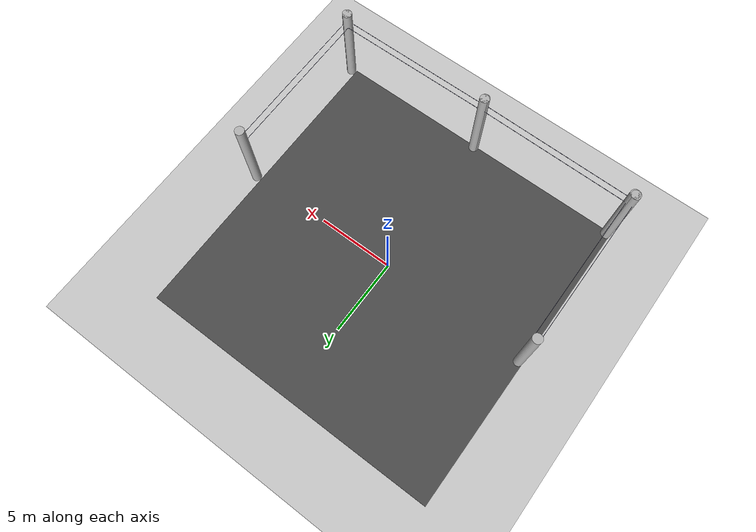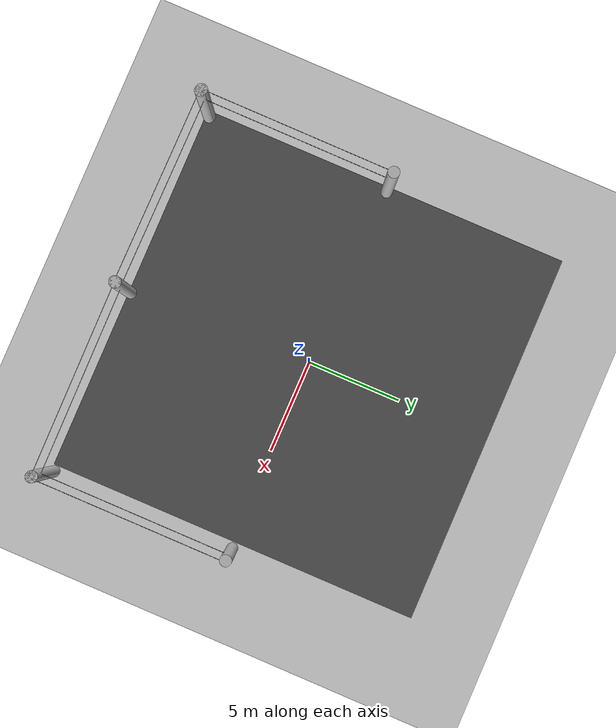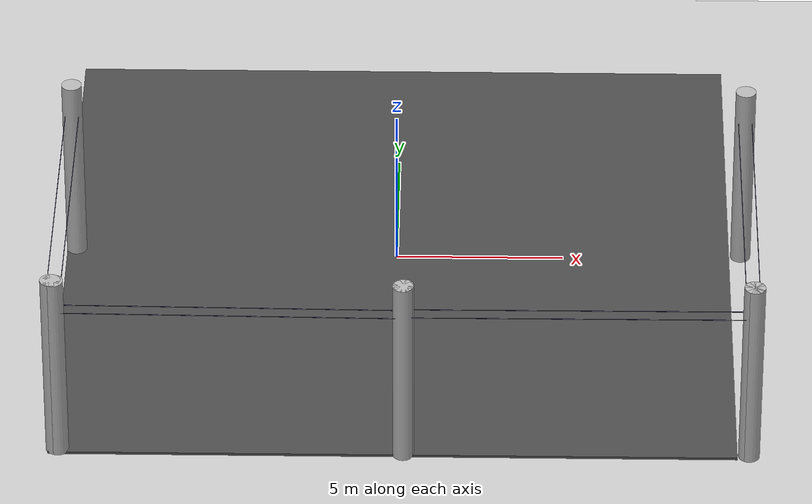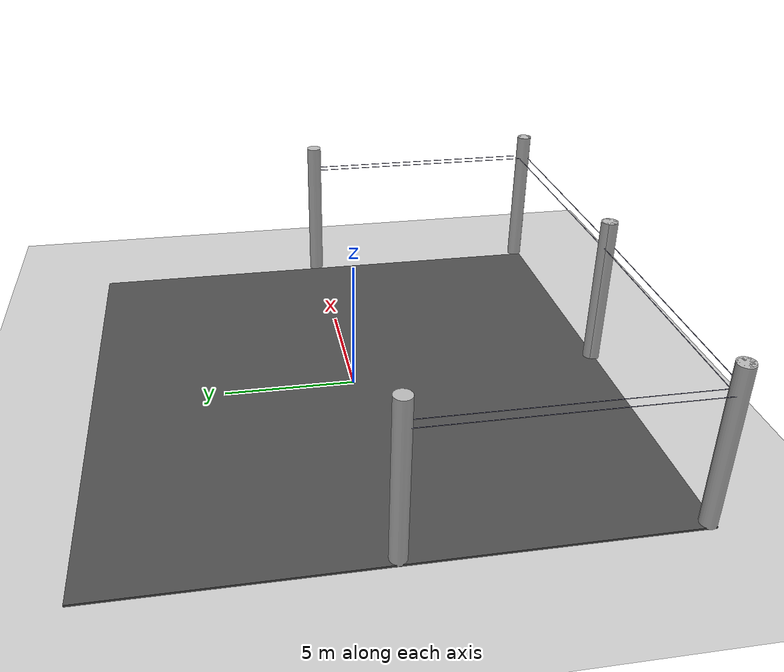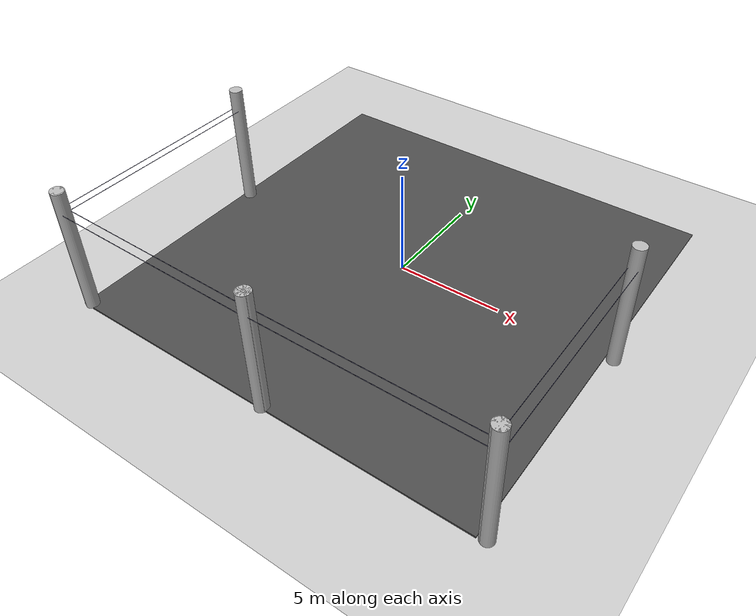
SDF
<sdf version="1.7">
 <world name="default">
  <model name="ground_plane">
   <static>1</static>
   <link name="link">
    <collision name="collision">
     <geometry><plane><normal>0 0 1</normal><size>100 100</size></plane></geometry>
     <surface><friction><ode><mu>100</mu><mu2>50</mu2></ode></friction></surface>
    </collision>
    <visual name="visual">
     <cast_shadows>0</cast_shadows>
     <geometry><plane><normal>0 0 1</normal><size>100 100</size></plane></geometry>
     <material>
      <script><uri>file://media/materials/scripts/gazebo.material</uri><name>Gazebo/Grey</name></script>
     </material>
    </visual>
   </link>
  </model>
  <model name="asphalt_plane">
   <pose>0.02662 0 0 0 -0 0</pose>
   <static>1</static>
   <link name="link">
    <collision name="collision"><geometry><box><size>20 20 0.1</size></box></geometry></collision>
    <visual name="visual">
     <cast_shadows>0</cast_shadows>
     <geometry><box><size>20 20 0.1</size></box></geometry>
     <material>
      <script>
       <uri>model://asphalt_plane/materials/scripts</uri>
       <uri>model://asphalt_plane/materials/textures</uri>
       <name>vrc/asphalt</name>
      </script>
     </material>
    </visual>
   </link>
  </model>
  <model name="telegraph_pole">
   <link name="pole_00">
    <pose>0 -5 3 0 -0 0</pose>
    <inertial>
     <inertia><ixx>1</ixx><ixy>0</ixy><ixz>0</ixz><iyy>1</iyy><iyz>0</iyz><izz>1</izz></inertia>
     <mass>1</mass>
    </inertial>
    <visual name="visual">
     <geometry><cylinder><radius>0.3</radius><length>6</length></cylinder></geometry>
     <material><script><uri>__default__</uri><name>__default__</name></script></material>
    </visual>
    <collision name="collision">
     <geometry><cylinder><radius>0.3</radius><length>6</length></cylinder></geometry>
     <surface>
      <friction>
       <ode><mu>1</mu><mu2>1</mu2><fdir1>0 0 0</fdir1><slip1>0</slip1><slip2>0</slip2></ode>
       <torsional>
        <coefficient>1</coefficient>
        <patch_radius>0</patch_radius>
        <surface_radius>0</surface_radius>
        <use_patch_radius>1</use_patch_radius>
        <ode><slip>0</slip></ode>
       </torsional>
      </friction>
      <bounce><restitution_coefficient>0</restitution_coefficient><threshold>1e+06</threshold></bounce>
      <contact>
       <collide_without_contact>0</collide_without_contact>
       <collide_without_contact_bitmask>1</collide_without_contact_bitmask>
       <collide_bitmask>1</collide_bitmask>
       <ode>
        <soft_cfm>0</soft_cfm>
        <soft_erp>0.2</soft_erp>
        <kp>1e+13</kp>
        <kd>1</kd>
        <max_vel>0.01</max_vel>
        <min_depth>0</min_depth>
       </ode>
       <bullet>
        <split_impulse>1</split_impulse>
        <split_impulse_penetration_threshold>-0.01</split_impulse_penetration_threshold>
        <soft_cfm>0</soft_cfm>
        <soft_erp>0.2</soft_erp>
        <kp>1e+13</kp>
        <kd>1</kd>
       </bullet>
      </contact>
     </surface>
    </collision>
   </link>
   <link name="line00_00_01">
    <pose>-0.2 0 5 1.57 -0 0</pose>
    <inertial>
     <inertia><ixx>1</ixx><ixy>0</ixy><ixz>0</ixz><iyy>1</iyy><iyz>0</iyz><izz>1</izz></inertia>
     <mass>1</mass>
    </inertial>
    <visual name="visual">
     <geometry><cylinder><radius>0.01</radius><length>10</length></cylinder></geometry>
     <material>
      <ambient>0.1 0.1 0.1 1</ambient>
      <diffuse>0.1 0.1 0.2 1</diffuse>
      <specular>0 0 0 0</specular>
      <emissive>0 0 0 1</emissive>
      <shader type="pixel"/>
      <script><name>ModelPreview_5::line00_00_01::visual_MATERIAL_</name><uri>__default__</uri></script>
     </material>
    </visual>
    <collision name="collision">
     <geometry><cylinder><radius>0.01</radius><length>10</length></cylinder></geometry>
     <surface>
      <friction>
       <ode><mu>1</mu><mu2>1</mu2><fdir1>0 0 0</fdir1><slip1>0</slip1><slip2>0</slip2></ode>
       <torsional>
        <coefficient>1</coefficient>
        <patch_radius>0</patch_radius>
        <surface_radius>0</surface_radius>
        <use_patch_radius>1</use_patch_radius>
        <ode><slip>0</slip></ode>
       </torsional>
      </friction>
      <bounce><restitution_coefficient>0</restitution_coefficient><threshold>1e+06</threshold></bounce>
      <contact>
       <collide_without_contact>0</collide_without_contact>
       <collide_without_contact_bitmask>1</collide_without_contact_bitmask>
       <collide_bitmask>1</collide_bitmask>
       <ode>
        <soft_cfm>0</soft_cfm>
        <soft_erp>0.2</soft_erp>
        <kp>1e+13</kp>
        <kd>1</kd>
        <max_vel>0.01</max_vel>
        <min_depth>0</min_depth>
       </ode>
       <bullet>
        <split_impulse>1</split_impulse>
        <split_impulse_penetration_threshold>-0.01</split_impulse_penetration_threshold>
        <soft_cfm>0</soft_cfm>
        <soft_erp>0.2</soft_erp>
        <kp>1e+13</kp>
        <kd>1</kd>
       </bullet>
      </contact>
     </surface>
    </collision>
   </link>
   <link name="line01_00_01">
    <pose>0.2 0 5 1.57 -0 0</pose>
    <inertial>
     <inertia><ixx>1</ixx><ixy>0</ixy><ixz>0</ixz><iyy>1</iyy><iyz>0</iyz><izz>1</izz></inertia>
     <mass>1</mass>
    </inertial>
    <visual name="visual">
     <geometry><cylinder><radius>0.01</radius><length>10</length></cylinder></geometry>
     <material>
      <ambient>0.1 0.1 0.1 1</ambient>
      <diffuse>0.1 0.1 0.2 1</diffuse>
      <specular>0 0 0 0</specular>
      <emissive>0 0 0 1</emissive>
      <shader type="pixel"/>
      <script><name>ModelPreview_5::line01_00_01::visual_MATERIAL_</name><uri>__default__</uri></script>
     </material>
    </visual>
    <collision name="collision">
     <geometry><cylinder><radius>0.01</radius><length>10</length></cylinder></geometry>
     <surface>
      <friction>
       <ode><mu>1</mu><mu2>1</mu2><fdir1>0 0 0</fdir1><slip1>0</slip1><slip2>0</slip2></ode>
       <torsional>
        <coefficient>1</coefficient>
        <patch_radius>0</patch_radius>
        <surface_radius>0</surface_radius>
        <use_patch_radius>1</use_patch_radius>
        <ode><slip>0</slip></ode>
       </torsional>
      </friction>
      <bounce><restitution_coefficient>0</restitution_coefficient><threshold>1e+06</threshold></bounce>
      <contact>
       <collide_without_contact>0</collide_without_contact>
       <collide_without_contact_bitmask>1</collide_without_contact_bitmask>
       <collide_bitmask>1</collide_bitmask>
       <ode>
        <soft_cfm>0</soft_cfm>
        <soft_erp>0.2</soft_erp>
        <kp>1e+13</kp>
        <kd>1</kd>
        <max_vel>0.01</max_vel>
        <min_depth>0</min_depth>
       </ode>
       <bullet>
        <split_impulse>1</split_impulse>
        <split_impulse_penetration_threshold>-0.01</split_impulse_penetration_threshold>
        <soft_cfm>0</soft_cfm>
        <soft_erp>0.2</soft_erp>
        <kp>1e+13</kp>
        <kd>1</kd>
       </bullet>
      </contact>
     </surface>
    </collision>
   </link>
   <link name="pole_01">
    <pose>0 5 3 0 -0 0</pose>
    <inertial>
     <inertia><ixx>1</ixx><ixy>0</ixy><ixz>0</ixz><iyy>1</iyy><iyz>0</iyz><izz>1</izz></inertia>
     <mass>1</mass>
    </inertial>
    <visual name="visual">
     <geometry><cylinder><radius>0.3</radius><length>6</length></cylinder></geometry>
     <material><script><uri>__default__</uri><name>__default__</name></script></material>
    </visual>
    <collision name="collision">
     <geometry><cylinder><radius>0.3</radius><length>6</length></cylinder></geometry>
     <surface>
      <friction>
       <ode><mu>1</mu><mu2>1</mu2><fdir1>0 0 0</fdir1><slip1>0</slip1><slip2>0</slip2></ode>
       <torsional>
        <coefficient>1</coefficient>
        <patch_radius>0</patch_radius>
        <surface_radius>0</surface_radius>
        <use_patch_radius>1</use_patch_radius>
        <ode><slip>0</slip></ode>
       </torsional>
      </friction>
      <bounce><restitution_coefficient>0</restitution_coefficient><threshold>1e+06</threshold></bounce>
      <contact>
       <collide_without_contact>0</collide_without_contact>
       <collide_without_contact_bitmask>1</collide_without_contact_bitmask>
       <collide_bitmask>1</collide_bitmask>
       <ode>
        <soft_cfm>0</soft_cfm>
        <soft_erp>0.2</soft_erp>
        <kp>1e+13</kp>
        <kd>1</kd>
        <max_vel>0.01</max_vel>
        <min_depth>0</min_depth>
       </ode>
       <bullet>
        <split_impulse>1</split_impulse>
        <split_impulse_penetration_threshold>-0.01</split_impulse_penetration_threshold>
        <soft_cfm>0</soft_cfm>
        <soft_erp>0.2</soft_erp>
        <kp>1e+13</kp>
        <kd>1</kd>
       </bullet>
      </contact>
     </surface>
    </collision>
   </link>
   <joint name="line00_pole_00" type="fixed">
    <parent>pole_00</parent>
    <child>line00_00_01</child>
    <pose>0 0 5 0 -0 0</pose>
    <physics>
     <ode><limit><cfm>0</cfm><erp>0.2</erp></limit><suspension><cfm>0</cfm><erp>0.2</erp></suspension></ode>
    </physics>
   </joint>
   <joint name="line00_pole_01" type="fixed">
    <parent>pole_01</parent>
    <child>line00_00_01</child>
    <pose>0 0 -5 0 -0 0</pose>
    <physics>
     <ode><limit><cfm>0</cfm><erp>0.2</erp></limit><suspension><cfm>0</cfm><erp>0.2</erp></suspension></ode>
    </physics>
   </joint>
   <joint name="line01_pole_00" type="fixed">
    <parent>pole_00</parent>
    <child>line01_00_01</child>
    <pose>0 0 5 0 -0 0</pose>
    <physics>
     <ode><limit><cfm>0</cfm><erp>0.2</erp></limit><suspension><cfm>0</cfm><erp>0.2</erp></suspension></ode>
    </physics>
   </joint>
   <joint name="line01_pole_01" type="fixed">
    <parent>pole_01</parent>
    <child>line01_00_01</child>
    <pose>0 0 -5 0 -0 0</pose>
    <physics>
     <ode><limit><cfm>0</cfm><erp>0.2</erp></limit><suspension><cfm>0</cfm><erp>0.2</erp></suspension></ode>
    </physics>
   </joint>
   <static>1</static>
   <pose>10.374 -4.84725 0 0 -0 0</pose>
  </model>
  <model name="telegraph_pole_0">
   <link name="pole_00">
    <pose>0 -5 3 0 -0 0</pose>
    <inertial>
     <inertia><ixx>1</ixx><ixy>0</ixy><ixz>0</ixz><iyy>1</iyy><iyz>0</iyz><izz>1</izz></inertia>
     <mass>1</mass>
    </inertial>
    <visual name="visual">
     <geometry><cylinder><radius>0.3</radius><length>6</length></cylinder></geometry>
     <material><script><uri>__default__</uri><name>__default__</name></script></material>
    </visual>
    <collision name="collision">
     <geometry><cylinder><radius>0.3</radius><length>6</length></cylinder></geometry>
     <surface>
      <friction>
       <ode><mu>1</mu><mu2>1</mu2><fdir1>0 0 0</fdir1><slip1>0</slip1><slip2>0</slip2></ode>
       <torsional>
        <coefficient>1</coefficient>
        <patch_radius>0</patch_radius>
        <surface_radius>0</surface_radius>
        <use_patch_radius>1</use_patch_radius>
        <ode><slip>0</slip></ode>
       </torsional>
      </friction>
      <bounce><restitution_coefficient>0</restitution_coefficient><threshold>1e+06</threshold></bounce>
      <contact>
       <collide_without_contact>0</collide_without_contact>
       <collide_without_contact_bitmask>1</collide_without_contact_bitmask>
       <collide_bitmask>1</collide_bitmask>
       <ode>
        <soft_cfm>0</soft_cfm>
        <soft_erp>0.2</soft_erp>
        <kp>1e+13</kp>
        <kd>1</kd>
        <max_vel>0.01</max_vel>
        <min_depth>0</min_depth>
       </ode>
       <bullet>
        <split_impulse>1</split_impulse>
        <split_impulse_penetration_threshold>-0.01</split_impulse_penetration_threshold>
        <soft_cfm>0</soft_cfm>
        <soft_erp>0.2</soft_erp>
        <kp>1e+13</kp>
        <kd>1</kd>
       </bullet>
      </contact>
     </surface>
    </collision>
   </link>
   <link name="line00_00_01">
    <pose>-0.2 0 5 1.57 -0 0</pose>
    <inertial>
     <inertia><ixx>1</ixx><ixy>0</ixy><ixz>0</ixz><iyy>1</iyy><iyz>0</iyz><izz>1</izz></inertia>
     <mass>1</mass>
    </inertial>
    <visual name="visual">
     <geometry><cylinder><radius>0.01</radius><length>10</length></cylinder></geometry>
     <material>
      <ambient>0.1 0.1 0.1 1</ambient>
      <diffuse>0.1 0.1 0.2 1</diffuse>
      <specular>0 0 0 0</specular>
      <emissive>0 0 0 1</emissive>
      <shader type="pixel"/>
      <script><name>ModelPreview_5::line00_00_01::visual_MATERIAL_</name><uri>__default__</uri></script>
     </material>
    </visual>
    <collision name="collision">
     <geometry><cylinder><radius>0.01</radius><length>10</length></cylinder></geometry>
     <surface>
      <friction>
       <ode><mu>1</mu><mu2>1</mu2><fdir1>0 0 0</fdir1><slip1>0</slip1><slip2>0</slip2></ode>
       <torsional>
        <coefficient>1</coefficient>
        <patch_radius>0</patch_radius>
        <surface_radius>0</surface_radius>
        <use_patch_radius>1</use_patch_radius>
        <ode><slip>0</slip></ode>
       </torsional>
      </friction>
      <bounce><restitution_coefficient>0</restitution_coefficient><threshold>1e+06</threshold></bounce>
      <contact>
       <collide_without_contact>0</collide_without_contact>
       <collide_without_contact_bitmask>1</collide_without_contact_bitmask>
       <collide_bitmask>1</collide_bitmask>
       <ode>
        <soft_cfm>0</soft_cfm>
        <soft_erp>0.2</soft_erp>
        <kp>1e+13</kp>
        <kd>1</kd>
        <max_vel>0.01</max_vel>
        <min_depth>0</min_depth>
       </ode>
       <bullet>
        <split_impulse>1</split_impulse>
        <split_impulse_penetration_threshold>-0.01</split_impulse_penetration_threshold>
        <soft_cfm>0</soft_cfm>
        <soft_erp>0.2</soft_erp>
        <kp>1e+13</kp>
        <kd>1</kd>
       </bullet>
      </contact>
     </surface>
    </collision>
   </link>
   <link name="line01_00_01">
    <pose>0.2 0 5 1.57 -0 0</pose>
    <inertial>
     <inertia><ixx>1</ixx><ixy>0</ixy><ixz>0</ixz><iyy>1</iyy><iyz>0</iyz><izz>1</izz></inertia>
     <mass>1</mass>
    </inertial>
    <visual name="visual">
     <geometry><cylinder><radius>0.01</radius><length>10</length></cylinder></geometry>
     <material>
      <ambient>0.1 0.1 0.1 1</ambient>
      <diffuse>0.1 0.1 0.2 1</diffuse>
      <specular>0 0 0 0</specular>
      <emissive>0 0 0 1</emissive>
      <shader type="pixel"/>
      <script><name>ModelPreview_5::line01_00_01::visual_MATERIAL_</name><uri>__default__</uri></script>
     </material>
    </visual>
    <collision name="collision">
     <geometry><cylinder><radius>0.01</radius><length>10</length></cylinder></geometry>
     <surface>
      <friction>
       <ode><mu>1</mu><mu2>1</mu2><fdir1>0 0 0</fdir1><slip1>0</slip1><slip2>0</slip2></ode>
       <torsional>
        <coefficient>1</coefficient>
        <patch_radius>0</patch_radius>
        <surface_radius>0</surface_radius>
        <use_patch_radius>1</use_patch_radius>
        <ode><slip>0</slip></ode>
       </torsional>
      </friction>
      <bounce><restitution_coefficient>0</restitution_coefficient><threshold>1e+06</threshold></bounce>
      <contact>
       <collide_without_contact>0</collide_without_contact>
       <collide_without_contact_bitmask>1</collide_without_contact_bitmask>
       <collide_bitmask>1</collide_bitmask>
       <ode>
        <soft_cfm>0</soft_cfm>
        <soft_erp>0.2</soft_erp>
        <kp>1e+13</kp>
        <kd>1</kd>
        <max_vel>0.01</max_vel>
        <min_depth>0</min_depth>
       </ode>
       <bullet>
        <split_impulse>1</split_impulse>
        <split_impulse_penetration_threshold>-0.01</split_impulse_penetration_threshold>
        <soft_cfm>0</soft_cfm>
        <soft_erp>0.2</soft_erp>
        <kp>1e+13</kp>
        <kd>1</kd>
       </bullet>
      </contact>
     </surface>
    </collision>
   </link>
   <link name="pole_01">
    <pose>0 5 3 0 -0 0</pose>
    <inertial>
     <inertia><ixx>1</ixx><ixy>0</ixy><ixz>0</ixz><iyy>1</iyy><iyz>0</iyz><izz>1</izz></inertia>
     <mass>1</mass>
    </inertial>
    <visual name="visual">
     <geometry><cylinder><radius>0.3</radius><length>6</length></cylinder></geometry>
     <material><script><uri>__default__</uri><name>__default__</name></script></material>
    </visual>
    <collision name="collision">
     <geometry><cylinder><radius>0.3</radius><length>6</length></cylinder></geometry>
     <surface>
      <friction>
       <ode><mu>1</mu><mu2>1</mu2><fdir1>0 0 0</fdir1><slip1>0</slip1><slip2>0</slip2></ode>
       <torsional>
        <coefficient>1</coefficient>
        <patch_radius>0</patch_radius>
        <surface_radius>0</surface_radius>
        <use_patch_radius>1</use_patch_radius>
        <ode><slip>0</slip></ode>
       </torsional>
      </friction>
      <bounce><restitution_coefficient>0</restitution_coefficient><threshold>1e+06</threshold></bounce>
      <contact>
       <collide_without_contact>0</collide_without_contact>
       <collide_without_contact_bitmask>1</collide_without_contact_bitmask>
       <collide_bitmask>1</collide_bitmask>
       <ode>
        <soft_cfm>0</soft_cfm>
        <soft_erp>0.2</soft_erp>
        <kp>1e+13</kp>
        <kd>1</kd>
        <max_vel>0.01</max_vel>
        <min_depth>0</min_depth>
       </ode>
       <bullet>
        <split_impulse>1</split_impulse>
        <split_impulse_penetration_threshold>-0.01</split_impulse_penetration_threshold>
        <soft_cfm>0</soft_cfm>
        <soft_erp>0.2</soft_erp>
        <kp>1e+13</kp>
        <kd>1</kd>
       </bullet>
      </contact>
     </surface>
    </collision>
   </link>
   <joint name="line00_pole_00" type="fixed">
    <parent>pole_00</parent>
    <child>line00_00_01</child>
    <pose>0 0 5 0 -0 0</pose>
    <physics>
     <ode><limit><cfm>0</cfm><erp>0.2</erp></limit><suspension><cfm>0</cfm><erp>0.2</erp></suspension></ode>
    </physics>
   </joint>
   <joint name="line00_pole_01" type="fixed">
    <parent>pole_01</parent>
    <child>line00_00_01</child>
    <pose>0 0 -5 0 -0 0</pose>
    <physics>
     <ode><limit><cfm>0</cfm><erp>0.2</erp></limit><suspension><cfm>0</cfm><erp>0.2</erp></suspension></ode>
    </physics>
   </joint>
   <joint name="line01_pole_00" type="fixed">
    <parent>pole_00</parent>
    <child>line01_00_01</child>
    <pose>0 0 5 0 -0 0</pose>
    <physics>
     <ode><limit><cfm>0</cfm><erp>0.2</erp></limit><suspension><cfm>0</cfm><erp>0.2</erp></suspension></ode>
    </physics>
   </joint>
   <joint name="line01_pole_01" type="fixed">
    <parent>pole_01</parent>
    <child>line01_00_01</child>
    <pose>0 0 -5 0 -0 0</pose>
    <physics>
     <ode><limit><cfm>0</cfm><erp>0.2</erp></limit><suspension><cfm>0</cfm><erp>0.2</erp></suspension></ode>
    </physics>
   </joint>
   <static>1</static>
   <pose>-9.70943 -4.78365 0 0 0 -0.003814</pose>
  </model>
  <model name="telegraph_pole_0_clone_0">
   <link name="pole_00">
    <pose>0 -5 3 0 -0 0</pose>
    <inertial>
     <inertia><ixx>1</ixx><ixy>0</ixy><ixz>0</ixz><iyy>1</iyy><iyz>0</iyz><izz>1</izz></inertia>
     <mass>1</mass>
    </inertial>
    <visual name="visual">
     <geometry><cylinder><radius>0.3</radius><length>6</length></cylinder></geometry>
     <material><script><uri>__default__</uri><name>__default__</name></script></material>
    </visual>
    <collision name="collision">
     <geometry><cylinder><radius>0.3</radius><length>6</length></cylinder></geometry>
     <surface>
      <friction>
       <ode><mu>1</mu><mu2>1</mu2><fdir1>0 0 0</fdir1><slip1>0</slip1><slip2>0</slip2></ode>
       <torsional>
        <coefficient>1</coefficient>
        <patch_radius>0</patch_radius>
        <surface_radius>0</surface_radius>
        <use_patch_radius>1</use_patch_radius>
        <ode><slip>0</slip></ode>
       </torsional>
      </friction>
      <bounce><restitution_coefficient>0</restitution_coefficient><threshold>1e+06</threshold></bounce>
      <contact>
       <collide_without_contact>0</collide_without_contact>
       <collide_without_contact_bitmask>1</collide_without_contact_bitmask>
       <collide_bitmask>1</collide_bitmask>
       <ode>
        <soft_cfm>0</soft_cfm>
        <soft_erp>0.2</soft_erp>
        <kp>1e+13</kp>
        <kd>1</kd>
        <max_vel>0.01</max_vel>
        <min_depth>0</min_depth>
       </ode>
       <bullet>
        <split_impulse>1</split_impulse>
        <split_impulse_penetration_threshold>-0.01</split_impulse_penetration_threshold>
        <soft_cfm>0</soft_cfm>
        <soft_erp>0.2</soft_erp>
        <kp>1e+13</kp>
        <kd>1</kd>
       </bullet>
      </contact>
     </surface>
    </collision>
   </link>
   <link name="line00_00_01">
    <pose>-0.2 0 5 1.57 -0 0</pose>
    <inertial>
     <inertia><ixx>1</ixx><ixy>0</ixy><ixz>0</ixz><iyy>1</iyy><iyz>0</iyz><izz>1</izz></inertia>
     <mass>1</mass>
    </inertial>
    <visual name="visual">
     <geometry><cylinder><radius>0.01</radius><length>10</length></cylinder></geometry>
     <material>
      <ambient>0.1 0.1 0.1 1</ambient>
      <diffuse>0.1 0.1 0.2 1</diffuse>
      <specular>0 0 0 0</specular>
      <emissive>0 0 0 1</emissive>
      <shader type="pixel"/>
      <script><name>ModelPreview_5::line00_00_01::visual_MATERIAL_</name><uri>__default__</uri></script>
     </material>
    </visual>
    <collision name="collision">
     <geometry><cylinder><radius>0.01</radius><length>10</length></cylinder></geometry>
     <surface>
      <friction>
       <ode><mu>1</mu><mu2>1</mu2><fdir1>0 0 0</fdir1><slip1>0</slip1><slip2>0</slip2></ode>
       <torsional>
        <coefficient>1</coefficient>
        <patch_radius>0</patch_radius>
        <surface_radius>0</surface_radius>
        <use_patch_radius>1</use_patch_radius>
        <ode><slip>0</slip></ode>
       </torsional>
      </friction>
      <bounce><restitution_coefficient>0</restitution_coefficient><threshold>1e+06</threshold></bounce>
      <contact>
       <collide_without_contact>0</collide_without_contact>
       <collide_without_contact_bitmask>1</collide_without_contact_bitmask>
       <collide_bitmask>1</collide_bitmask>
       <ode>
        <soft_cfm>0</soft_cfm>
        <soft_erp>0.2</soft_erp>
        <kp>1e+13</kp>
        <kd>1</kd>
        <max_vel>0.01</max_vel>
        <min_depth>0</min_depth>
       </ode>
       <bullet>
        <split_impulse>1</split_impulse>
        <split_impulse_penetration_threshold>-0.01</split_impulse_penetration_threshold>
        <soft_cfm>0</soft_cfm>
        <soft_erp>0.2</soft_erp>
        <kp>1e+13</kp>
        <kd>1</kd>
       </bullet>
      </contact>
     </surface>
    </collision>
   </link>
   <link name="line01_00_01">
    <pose>0.2 0 5 1.57 -0 0</pose>
    <inertial>
     <inertia><ixx>1</ixx><ixy>0</ixy><ixz>0</ixz><iyy>1</iyy><iyz>0</iyz><izz>1</izz></inertia>
     <mass>1</mass>
    </inertial>
    <visual name="visual">
     <geometry><cylinder><radius>0.01</radius><length>10</length></cylinder></geometry>
     <material>
      <ambient>0.1 0.1 0.1 1</ambient>
      <diffuse>0.1 0.1 0.2 1</diffuse>
      <specular>0 0 0 0</specular>
      <emissive>0 0 0 1</emissive>
      <shader type="pixel"/>
      <script><name>ModelPreview_5::line01_00_01::visual_MATERIAL_</name><uri>__default__</uri></script>
     </material>
    </visual>
    <collision name="collision">
     <geometry><cylinder><radius>0.01</radius><length>10</length></cylinder></geometry>
     <surface>
      <friction>
       <ode><mu>1</mu><mu2>1</mu2><fdir1>0 0 0</fdir1><slip1>0</slip1><slip2>0</slip2></ode>
       <torsional>
        <coefficient>1</coefficient>
        <patch_radius>0</patch_radius>
        <surface_radius>0</surface_radius>
        <use_patch_radius>1</use_patch_radius>
        <ode><slip>0</slip></ode>
       </torsional>
      </friction>
      <bounce><restitution_coefficient>0</restitution_coefficient><threshold>1e+06</threshold></bounce>
      <contact>
       <collide_without_contact>0</collide_without_contact>
       <collide_without_contact_bitmask>1</collide_without_contact_bitmask>
       <collide_bitmask>1</collide_bitmask>
       <ode>
        <soft_cfm>0</soft_cfm>
        <soft_erp>0.2</soft_erp>
        <kp>1e+13</kp>
        <kd>1</kd>
        <max_vel>0.01</max_vel>
        <min_depth>0</min_depth>
       </ode>
       <bullet>
        <split_impulse>1</split_impulse>
        <split_impulse_penetration_threshold>-0.01</split_impulse_penetration_threshold>
        <soft_cfm>0</soft_cfm>
        <soft_erp>0.2</soft_erp>
        <kp>1e+13</kp>
        <kd>1</kd>
       </bullet>
      </contact>
     </surface>
    </collision>
   </link>
   <link name="pole_01">
    <pose>0 5 3 0 -0 0</pose>
    <inertial>
     <inertia><ixx>1</ixx><ixy>0</ixy><ixz>0</ixz><iyy>1</iyy><iyz>0</iyz><izz>1</izz></inertia>
     <mass>1</mass>
    </inertial>
    <visual name="visual">
     <geometry><cylinder><radius>0.3</radius><length>6</length></cylinder></geometry>
     <material><script><uri>__default__</uri><name>__default__</name></script></material>
    </visual>
    <collision name="collision">
     <geometry><cylinder><radius>0.3</radius><length>6</length></cylinder></geometry>
     <surface>
      <friction>
       <ode><mu>1</mu><mu2>1</mu2><fdir1>0 0 0</fdir1><slip1>0</slip1><slip2>0</slip2></ode>
       <torsional>
        <coefficient>1</coefficient>
        <patch_radius>0</patch_radius>
        <surface_radius>0</surface_radius>
        <use_patch_radius>1</use_patch_radius>
        <ode><slip>0</slip></ode>
       </torsional>
      </friction>
      <bounce><restitution_coefficient>0</restitution_coefficient><threshold>1e+06</threshold></bounce>
      <contact>
       <collide_without_contact>0</collide_without_contact>
       <collide_without_contact_bitmask>1</collide_without_contact_bitmask>
       <collide_bitmask>1</collide_bitmask>
       <ode>
        <soft_cfm>0</soft_cfm>
        <soft_erp>0.2</soft_erp>
        <kp>1e+13</kp>
        <kd>1</kd>
        <max_vel>0.01</max_vel>
        <min_depth>0</min_depth>
       </ode>
       <bullet>
        <split_impulse>1</split_impulse>
        <split_impulse_penetration_threshold>-0.01</split_impulse_penetration_threshold>
        <soft_cfm>0</soft_cfm>
        <soft_erp>0.2</soft_erp>
        <kp>1e+13</kp>
        <kd>1</kd>
       </bullet>
      </contact>
     </surface>
    </collision>
   </link>
   <joint name="line00_pole_00" type="fixed">
    <parent>pole_00</parent>
    <child>line00_00_01</child>
    <pose>0 0 5 0 -0 0</pose>
    <physics>
     <ode><limit><cfm>0</cfm><erp>0.2</erp></limit><suspension><cfm>0</cfm><erp>0.2</erp></suspension></ode>
    </physics>
   </joint>
   <joint name="line00_pole_01" type="fixed">
    <parent>pole_01</parent>
    <child>line00_00_01</child>
    <pose>0 0 -5 0 -0 0</pose>
    <physics>
     <ode><limit><cfm>0</cfm><erp>0.2</erp></limit><suspension><cfm>0</cfm><erp>0.2</erp></suspension></ode>
    </physics>
   </joint>
   <joint name="line01_pole_00" type="fixed">
    <parent>pole_00</parent>
    <child>line01_00_01</child>
    <pose>0 0 5 0 -0 0</pose>
    <physics>
     <ode><limit><cfm>0</cfm><erp>0.2</erp></limit><suspension><cfm>0</cfm><erp>0.2</erp></suspension></ode>
    </physics>
   </joint>
   <joint name="line01_pole_01" type="fixed">
    <parent>pole_01</parent>
    <child>line01_00_01</child>
    <pose>0 0 -5 0 -0 0</pose>
    <physics>
     <ode><limit><cfm>0</cfm><erp>0.2</erp></limit><suspension><cfm>0</cfm><erp>0.2</erp></suspension></ode>
    </physics>
   </joint>
   <static>1</static>
   <pose>5.35625 -9.86121 0 0 0 -1.56607</pose>
  </model>
  <model name="telegraph_pole_0_clone_1">
   <link name="pole_00">
    <pose>0 -5 3 0 -0 0</pose>
    <inertial>
     <inertia><ixx>1</ixx><ixy>0</ixy><ixz>0</ixz><iyy>1</iyy><iyz>0</iyz><izz>1</izz></inertia>
     <mass>1</mass>
    </inertial>
    <visual name="visual">
     <geometry><cylinder><radius>0.3</radius><length>6</length></cylinder></geometry>
     <material><script><uri>__default__</uri><name>__default__</name></script></material>
    </visual>
    <collision name="collision">
     <geometry><cylinder><radius>0.3</radius><length>6</length></cylinder></geometry>
     <surface>
      <friction>
       <ode><mu>1</mu><mu2>1</mu2><fdir1>0 0 0</fdir1><slip1>0</slip1><slip2>0</slip2></ode>
       <torsional>
        <coefficient>1</coefficient>
        <patch_radius>0</patch_radius>
        <surface_radius>0</surface_radius>
        <use_patch_radius>1</use_patch_radius>
        <ode><slip>0</slip></ode>
       </torsional>
      </friction>
      <bounce><restitution_coefficient>0</restitution_coefficient><threshold>1e+06</threshold></bounce>
      <contact>
       <collide_without_contact>0</collide_without_contact>
       <collide_without_contact_bitmask>1</collide_without_contact_bitmask>
       <collide_bitmask>1</collide_bitmask>
       <ode>
        <soft_cfm>0</soft_cfm>
        <soft_erp>0.2</soft_erp>
        <kp>1e+13</kp>
        <kd>1</kd>
        <max_vel>0.01</max_vel>
        <min_depth>0</min_depth>
       </ode>
       <bullet>
        <split_impulse>1</split_impulse>
        <split_impulse_penetration_threshold>-0.01</split_impulse_penetration_threshold>
        <soft_cfm>0</soft_cfm>
        <soft_erp>0.2</soft_erp>
        <kp>1e+13</kp>
        <kd>1</kd>
       </bullet>
      </contact>
     </surface>
    </collision>
   </link>
   <link name="line00_00_01">
    <pose>-0.2 0 5 1.57 -0 0</pose>
    <inertial>
     <inertia><ixx>1</ixx><ixy>0</ixy><ixz>0</ixz><iyy>1</iyy><iyz>0</iyz><izz>1</izz></inertia>
     <mass>1</mass>
    </inertial>
    <visual name="visual">
     <geometry><cylinder><radius>0.01</radius><length>10</length></cylinder></geometry>
     <material>
      <ambient>0.1 0.1 0.1 1</ambient>
      <diffuse>0.1 0.1 0.2 1</diffuse>
      <specular>0 0 0 0</specular>
      <emissive>0 0 0 1</emissive>
      <shader type="pixel"/>
      <script><name>ModelPreview_5::line00_00_01::visual_MATERIAL_</name><uri>__default__</uri></script>
     </material>
    </visual>
    <collision name="collision">
     <geometry><cylinder><radius>0.01</radius><length>10</length></cylinder></geometry>
     <surface>
      <friction>
       <ode><mu>1</mu><mu2>1</mu2><fdir1>0 0 0</fdir1><slip1>0</slip1><slip2>0</slip2></ode>
       <torsional>
        <coefficient>1</coefficient>
        <patch_radius>0</patch_radius>
        <surface_radius>0</surface_radius>
        <use_patch_radius>1</use_patch_radius>
        <ode><slip>0</slip></ode>
       </torsional>
      </friction>
      <bounce><restitution_coefficient>0</restitution_coefficient><threshold>1e+06</threshold></bounce>
      <contact>
       <collide_without_contact>0</collide_without_contact>
       <collide_without_contact_bitmask>1</collide_without_contact_bitmask>
       <collide_bitmask>1</collide_bitmask>
       <ode>
        <soft_cfm>0</soft_cfm>
        <soft_erp>0.2</soft_erp>
        <kp>1e+13</kp>
        <kd>1</kd>
        <max_vel>0.01</max_vel>
        <min_depth>0</min_depth>
       </ode>
       <bullet>
        <split_impulse>1</split_impulse>
        <split_impulse_penetration_threshold>-0.01</split_impulse_penetration_threshold>
        <soft_cfm>0</soft_cfm>
        <soft_erp>0.2</soft_erp>
        <kp>1e+13</kp>
        <kd>1</kd>
       </bullet>
      </contact>
     </surface>
    </collision>
   </link>
   <link name="line01_00_01">
    <pose>0.2 0 5 1.57 -0 0</pose>
    <inertial>
     <inertia><ixx>1</ixx><ixy>0</ixy><ixz>0</ixz><iyy>1</iyy><iyz>0</iyz><izz>1</izz></inertia>
     <mass>1</mass>
    </inertial>
    <visual name="visual">
     <geometry><cylinder><radius>0.01</radius><length>10</length></cylinder></geometry>
     <material>
      <ambient>0.1 0.1 0.1 1</ambient>
      <diffuse>0.1 0.1 0.2 1</diffuse>
      <specular>0 0 0 0</specular>
      <emissive>0 0 0 1</emissive>
      <shader type="pixel"/>
      <script><name>ModelPreview_5::line01_00_01::visual_MATERIAL_</name><uri>__default__</uri></script>
     </material>
    </visual>
    <collision name="collision">
     <geometry><cylinder><radius>0.01</radius><length>10</length></cylinder></geometry>
     <surface>
      <friction>
       <ode><mu>1</mu><mu2>1</mu2><fdir1>0 0 0</fdir1><slip1>0</slip1><slip2>0</slip2></ode>
       <torsional>
        <coefficient>1</coefficient>
        <patch_radius>0</patch_radius>
        <surface_radius>0</surface_radius>
        <use_patch_radius>1</use_patch_radius>
        <ode><slip>0</slip></ode>
       </torsional>
      </friction>
      <bounce><restitution_coefficient>0</restitution_coefficient><threshold>1e+06</threshold></bounce>
      <contact>
       <collide_without_contact>0</collide_without_contact>
       <collide_without_contact_bitmask>1</collide_without_contact_bitmask>
       <collide_bitmask>1</collide_bitmask>
       <ode>
        <soft_cfm>0</soft_cfm>
        <soft_erp>0.2</soft_erp>
        <kp>1e+13</kp>
        <kd>1</kd>
        <max_vel>0.01</max_vel>
        <min_depth>0</min_depth>
       </ode>
       <bullet>
        <split_impulse>1</split_impulse>
        <split_impulse_penetration_threshold>-0.01</split_impulse_penetration_threshold>
        <soft_cfm>0</soft_cfm>
        <soft_erp>0.2</soft_erp>
        <kp>1e+13</kp>
        <kd>1</kd>
       </bullet>
      </contact>
     </surface>
    </collision>
   </link>
   <link name="pole_01">
    <pose>0 5 3 0 -0 0</pose>
    <inertial>
     <inertia><ixx>1</ixx><ixy>0</ixy><ixz>0</ixz><iyy>1</iyy><iyz>0</iyz><izz>1</izz></inertia>
     <mass>1</mass>
    </inertial>
    <visual name="visual">
     <geometry><cylinder><radius>0.3</radius><length>6</length></cylinder></geometry>
     <material><script><uri>__default__</uri><name>__default__</name></script></material>
    </visual>
    <collision name="collision">
     <geometry><cylinder><radius>0.3</radius><length>6</length></cylinder></geometry>
     <surface>
      <friction>
       <ode><mu>1</mu><mu2>1</mu2><fdir1>0 0 0</fdir1><slip1>0</slip1><slip2>0</slip2></ode>
       <torsional>
        <coefficient>1</coefficient>
        <patch_radius>0</patch_radius>
        <surface_radius>0</surface_radius>
        <use_patch_radius>1</use_patch_radius>
        <ode><slip>0</slip></ode>
       </torsional>
      </friction>
      <bounce><restitution_coefficient>0</restitution_coefficient><threshold>1e+06</threshold></bounce>
      <contact>
       <collide_without_contact>0</collide_without_contact>
       <collide_without_contact_bitmask>1</collide_without_contact_bitmask>
       <collide_bitmask>1</collide_bitmask>
       <ode>
        <soft_cfm>0</soft_cfm>
        <soft_erp>0.2</soft_erp>
        <kp>1e+13</kp>
        <kd>1</kd>
        <max_vel>0.01</max_vel>
        <min_depth>0</min_depth>
       </ode>
       <bullet>
        <split_impulse>1</split_impulse>
        <split_impulse_penetration_threshold>-0.01</split_impulse_penetration_threshold>
        <soft_cfm>0</soft_cfm>
        <soft_erp>0.2</soft_erp>
        <kp>1e+13</kp>
        <kd>1</kd>
       </bullet>
      </contact>
     </surface>
    </collision>
   </link>
   <joint name="line00_pole_00" type="fixed">
    <parent>pole_00</parent>
    <child>line00_00_01</child>
    <pose>0 0 5 0 -0 0</pose>
    <physics>
     <ode><limit><cfm>0</cfm><erp>0.2</erp></limit><suspension><cfm>0</cfm><erp>0.2</erp></suspension></ode>
    </physics>
   </joint>
   <joint name="line00_pole_01" type="fixed">
    <parent>pole_01</parent>
    <child>line00_00_01</child>
    <pose>0 0 -5 0 -0 0</pose>
    <physics>
     <ode><limit><cfm>0</cfm><erp>0.2</erp></limit><suspension><cfm>0</cfm><erp>0.2</erp></suspension></ode>
    </physics>
   </joint>
   <joint name="line01_pole_00" type="fixed">
    <parent>pole_00</parent>
    <child>line01_00_01</child>
    <pose>0 0 5 0 -0 0</pose>
    <physics>
     <ode><limit><cfm>0</cfm><erp>0.2</erp></limit><suspension><cfm>0</cfm><erp>0.2</erp></suspension></ode>
    </physics>
   </joint>
   <joint name="line01_pole_01" type="fixed">
    <parent>pole_01</parent>
    <child>line01_00_01</child>
    <pose>0 0 -5 0 -0 0</pose>
    <physics>
     <ode><limit><cfm>0</cfm><erp>0.2</erp></limit><suspension><cfm>0</cfm><erp>0.2</erp></suspension></ode>
    </physics>
   </joint>
   <static>1</static>
   <pose>-4.66043 -9.8643 0 0 0 -1.58167</pose>
  </model>
 </world>
</sdf>
